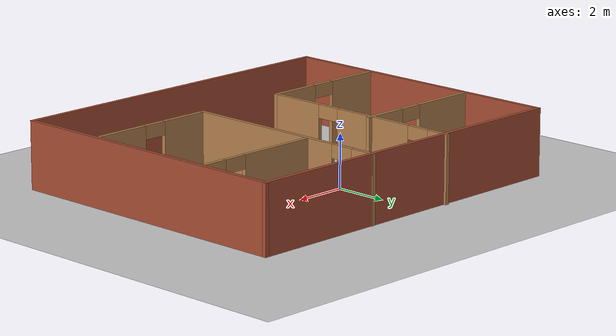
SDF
<sdf version="1.7">
 <world name="default">
  <light name="sun" type="directional">
   <pose>0 0 10 0 -0 0</pose>
   <diffuse>0.8 0.8 0.8 1</diffuse>
   <specular>0.2 0.2 0.2 1</specular>
   <attenuation>
    <range>1000</range>
    <constant>0.9</constant>
    <linear>0.01</linear>
    <quadratic>0.001</quadratic>
   </attenuation>
   <direction>-0.5 0.1 -0.9</direction>
   <spot><inner_angle>0</inner_angle><outer_angle>0</outer_angle><falloff>0</falloff></spot>
  </light>
  <model name="ground_plane">
   <static>1</static>
   <link name="link">
    <collision name="collision">
     <geometry><plane><normal>0 0 1</normal><size>100 100</size></plane></geometry>
     <surface><friction><ode><mu>100</mu><mu2>50</mu2></ode></friction></surface>
    </collision>
    <visual name="visual">
     <cast_shadows>0</cast_shadows>
     <geometry><plane><normal>0 0 1</normal><size>100 100</size></plane></geometry>
     <material>
      <script><uri>file://media/materials/scripts/gazebo.material</uri><name>Gazebo/Grey</name></script>
     </material>
    </visual>
   </link>
  </model>
  <gravity>0 0 -9.8</gravity>
  <magnetic_field>6e-06 2.3e-05 -4.2e-05</magnetic_field>
  <atmosphere type="adiabatic"/>
  <physics type="ode">
   <max_step_size>0.001</max_step_size>
   <real_time_factor>1</real_time_factor>
   <real_time_update_rate>1000</real_time_update_rate>
  </physics>
  <scene><ambient>0.4 0.4 0.4 1</ambient><background>0.7 0.7 0.7 1</background><shadows>1</shadows></scene>
  <audio><device>default</device></audio>
  <spherical_coordinates>
   <surface_model>EARTH_WGS84</surface_model>
   <latitude_deg>0</latitude_deg>
   <longitude_deg>0</longitude_deg>
   <elevation>0</elevation>
   <heading_deg>0</heading_deg>
  </spherical_coordinates>
  <model name="myfloor">
   <pose>0.719248 -1.8128 0 0 -0 0</pose>
   <link name="Wall_10">
    <collision name="Wall_10_Collision">
     <geometry><box><size>11.5 0.15 2.5</size></box></geometry>
     <pose>0 0 1.25 0 -0 0</pose>
    </collision>
    <visual name="Wall_10_Visual">
     <pose>0 0 1.25 0 -0 0</pose>
     <geometry><box><size>11.5 0.15 2.5</size></box></geometry>
     <material>
      <script><uri>file://media/materials/scripts/gazebo.material</uri><name>Gazebo/Bricks</name></script>
      <ambient>1 1 1 1</ambient>
     </material>
     <meta><layer>0</layer></meta>
    </visual>
    <pose>6.8 -0.045373 0 0 -0 1.5708</pose>
   </link>
   <link name="Wall_11">
    <collision name="Wall_11_Collision">
     <geometry><box><size>13.75 0.15 2.5</size></box></geometry>
     <pose>0 0 1.25 0 -0 0</pose>
    </collision>
    <visual name="Wall_11_Visual">
     <pose>0 0 1.25 0 -0 0</pose>
     <geometry><box><size>13.75 0.15 2.5</size></box></geometry>
     <material>
      <script><uri>file://media/materials/scripts/gazebo.material</uri><name>Gazebo/Bricks</name></script>
      <ambient>1 1 1 1</ambient>
     </material>
     <meta><layer>0</layer></meta>
    </visual>
    <pose>-0 5.62963 0 0 -0 3.14159</pose>
   </link>
   <link name="Wall_12">
    <collision name="Wall_12_Collision">
     <geometry><box><size>11.5 0.15 2.5</size></box></geometry>
     <pose>0 0 1.25 0 -0 0</pose>
    </collision>
    <visual name="Wall_12_Visual">
     <pose>0 0 1.25 0 -0 0</pose>
     <geometry><box><size>11.5 0.15 2.5</size></box></geometry>
     <material>
      <script><uri>file://media/materials/scripts/gazebo.material</uri><name>Gazebo/Bricks</name></script>
      <ambient>1 1 1 1</ambient>
     </material>
     <meta><layer>0</layer></meta>
    </visual>
    <pose>-6.8 -0.045373 0 0 -0 -1.5708</pose>
   </link>
   <link name="Wall_14">
    <pose>-1.84438 1.67037 0 0 -0 -1.5708</pose>
    <visual name="Wall_14_Visual_0">
     <pose>-3.6854 0 1.25 0 -0 0</pose>
     <geometry><box><size>0.879199 0.15 2.5</size></box></geometry>
     <material>
      <script><uri>file://media/materials/scripts/gazebo.material</uri><name>Gazebo/Wood</name></script>
      <ambient>1 1 1 1</ambient>
     </material>
     <meta><layer>0</layer></meta>
    </visual>
    <collision name="Wall_14_Collision_0">
     <geometry><box><size>0.879199 0.15 2.5</size></box></geometry>
     <pose>-3.6854 0 1.25 0 -0 0</pose>
    </collision>
    <visual name="Wall_14_Visual_1">
     <pose>-0.66978 0 1.25 0 -0 0</pose>
     <geometry><box><size>3.35204 0.15 2.5</size></box></geometry>
     <material>
      <script><uri>file://media/materials/scripts/gazebo.material</uri><name>Gazebo/Wood</name></script>
      <ambient>1 1 1 1</ambient>
     </material>
     <meta><layer>0</layer></meta>
    </visual>
    <collision name="Wall_14_Collision_1">
     <geometry><box><size>3.35204 0.15 2.5</size></box></geometry>
     <pose>-0.66978 0 1.25 0 -0 0</pose>
    </collision>
    <visual name="Wall_14_Visual_2">
     <pose>3.01562 0 1.25 0 -0 0</pose>
     <geometry><box><size>2.21876 0.15 2.5</size></box></geometry>
     <material>
      <script><uri>file://media/materials/scripts/gazebo.material</uri><name>Gazebo/Wood</name></script>
      <ambient>1 1 1 1</ambient>
     </material>
     <meta><layer>0</layer></meta>
    </visual>
    <collision name="Wall_14_Collision_2">
     <geometry><box><size>2.21876 0.15 2.5</size></box></geometry>
     <pose>3.01562 0 1.25 0 -0 0</pose>
    </collision>
    <visual name="Wall_14_Visual_3">
     <pose>-2.7958 0 2.25 0 -0 0</pose>
     <geometry><box><size>0.9 0.15 0.5</size></box></geometry>
     <material>
      <script><uri>file://media/materials/scripts/gazebo.material</uri><name>Gazebo/Wood</name></script>
      <ambient>1 1 1 1</ambient>
     </material>
     <meta><layer>0</layer></meta>
    </visual>
    <collision name="Wall_14_Collision_3">
     <geometry><box><size>0.9 0.15 0.5</size></box></geometry>
     <pose>-2.7958 0 2.25 0 -0 0</pose>
    </collision>
    <visual name="Wall_14_Visual_4">
     <pose>1.45624 0 2.25 0 -0 0</pose>
     <geometry><box><size>0.9 0.15 0.5</size></box></geometry>
     <material>
      <script><uri>file://media/materials/scripts/gazebo.material</uri><name>Gazebo/Wood</name></script>
      <ambient>1 1 1 1</ambient>
     </material>
     <meta><layer>0</layer></meta>
    </visual>
    <collision name="Wall_14_Collision_4">
     <geometry><box><size>0.9 0.15 0.5</size></box></geometry>
     <pose>1.45624 0 2.25 0 -0 0</pose>
    </collision>
   </link>
   <link name="Wall_15">
    <pose>-4.26938 -2.37963 0 0 -0 3.14159</pose>
    <visual name="Wall_15_Visual_0">
     <pose>-1.50978 0 1.25 0 -0 0</pose>
     <geometry><box><size>1.98045 0.15 2.5</size></box></geometry>
     <material>
      <script><uri>file://media/materials/scripts/gazebo.material</uri><name>Gazebo/Wood</name></script>
      <ambient>1 1 1 1</ambient>
     </material>
     <meta><layer>0</layer></meta>
    </visual>
    <collision name="Wall_15_Collision_0">
     <geometry><box><size>1.98045 0.15 2.5</size></box></geometry>
     <pose>-1.50978 0 1.25 0 -0 0</pose>
    </collision>
    <visual name="Wall_15_Visual_1">
     <pose>1.44022 0 1.25 0 -0 0</pose>
     <geometry><box><size>2.11955 0.15 2.5</size></box></geometry>
     <material>
      <script><uri>file://media/materials/scripts/gazebo.material</uri><name>Gazebo/Wood</name></script>
      <ambient>1 1 1 1</ambient>
     </material>
     <meta><layer>0</layer></meta>
    </visual>
    <collision name="Wall_15_Collision_1">
     <geometry><box><size>2.11955 0.15 2.5</size></box></geometry>
     <pose>1.44022 0 1.25 0 -0 0</pose>
    </collision>
    <visual name="Wall_15_Visual_2">
     <pose>-0.069552 0 2.25 0 -0 0</pose>
     <geometry><box><size>0.9 0.15 0.5</size></box></geometry>
     <material>
      <script><uri>file://media/materials/scripts/gazebo.material</uri><name>Gazebo/Wood</name></script>
      <ambient>1 1 1 1</ambient>
     </material>
     <meta><layer>0</layer></meta>
    </visual>
    <collision name="Wall_15_Collision_2">
     <geometry><box><size>0.9 0.15 0.5</size></box></geometry>
     <pose>-0.069552 0 2.25 0 -0 0</pose>
    </collision>
   </link>
   <link name="Wall_17">
    <pose>1.79585 1.60919 0 0 -0 -1.5708</pose>
    <visual name="Wall_17_Visual_0">
     <pose>-3.63951 0 1.25 0 -0 0</pose>
     <geometry><box><size>0.97097 0.15 2.5</size></box></geometry>
     <material>
      <script><uri>file://media/materials/scripts/gazebo.material</uri><name>Gazebo/Wood</name></script>
      <ambient>1 1 1 1</ambient>
     </material>
     <meta><layer>0</layer></meta>
    </visual>
    <collision name="Wall_17_Collision_0">
     <geometry><box><size>0.97097 0.15 2.5</size></box></geometry>
     <pose>-3.63951 0 1.25 0 -0 0</pose>
    </collision>
    <visual name="Wall_17_Visual_1">
     <pose>0.935485 0 1.25 0 -0 0</pose>
     <geometry><box><size>6.37903 0.15 2.5</size></box></geometry>
     <material>
      <script><uri>file://media/materials/scripts/gazebo.material</uri><name>Gazebo/Wood</name></script>
      <ambient>1 1 1 1</ambient>
     </material>
     <meta><layer>0</layer></meta>
    </visual>
    <collision name="Wall_17_Collision_1">
     <geometry><box><size>6.37903 0.15 2.5</size></box></geometry>
     <pose>0.935485 0 1.25 0 -0 0</pose>
    </collision>
    <visual name="Wall_17_Visual_2">
     <pose>-2.70403 0 2.25 0 -0 0</pose>
     <geometry><box><size>0.9 0.15 0.5</size></box></geometry>
     <material>
      <script><uri>file://media/materials/scripts/gazebo.material</uri><name>Gazebo/Wood</name></script>
      <ambient>1 1 1 1</ambient>
     </material>
     <meta><layer>0</layer></meta>
    </visual>
    <collision name="Wall_17_Collision_2">
     <geometry><box><size>0.9 0.15 0.5</size></box></geometry>
     <pose>-2.70403 0 2.25 0 -0 0</pose>
    </collision>
   </link>
   <link name="Wall_18">
    <pose>4.22085 -2.44081 0 0 -0 0</pose>
    <visual name="Wall_18_Visual_0">
     <pose>-1.50978 0 1.25 0 -0 0</pose>
     <geometry><box><size>1.98045 0.15 2.5</size></box></geometry>
     <material>
      <script><uri>file://media/materials/scripts/gazebo.material</uri><name>Gazebo/Wood</name></script>
      <ambient>1 1 1 1</ambient>
     </material>
     <meta><layer>0</layer></meta>
    </visual>
    <collision name="Wall_18_Collision_0">
     <geometry><box><size>1.98045 0.15 2.5</size></box></geometry>
     <pose>-1.50978 0 1.25 0 -0 0</pose>
    </collision>
    <visual name="Wall_18_Visual_1">
     <pose>1.44022 0 1.25 0 -0 0</pose>
     <geometry><box><size>2.11955 0.15 2.5</size></box></geometry>
     <material>
      <script><uri>file://media/materials/scripts/gazebo.material</uri><name>Gazebo/Wood</name></script>
      <ambient>1 1 1 1</ambient>
     </material>
     <meta><layer>0</layer></meta>
    </visual>
    <collision name="Wall_18_Collision_1">
     <geometry><box><size>2.11955 0.15 2.5</size></box></geometry>
     <pose>1.44022 0 1.25 0 -0 0</pose>
    </collision>
    <visual name="Wall_18_Visual_2">
     <pose>-0.069552 0 2.25 0 -0 0</pose>
     <geometry><box><size>0.9 0.15 0.5</size></box></geometry>
     <material>
      <script><uri>file://media/materials/scripts/gazebo.material</uri><name>Gazebo/Wood</name></script>
      <ambient>1 1 1 1</ambient>
     </material>
     <meta><layer>0</layer></meta>
    </visual>
    <collision name="Wall_18_Collision_2">
     <geometry><box><size>0.9 0.15 0.5</size></box></geometry>
     <pose>-0.069552 0 2.25 0 -0 0</pose>
    </collision>
   </link>
   <link name="Wall_20">
    <pose>4.28203 2.69194 0 0 -0 0</pose>
    <visual name="Wall_20_Visual_0">
     <pose>-0.959152 0 1.25 0 -0 0</pose>
     <geometry><box><size>3.0817 0.15 2.5</size></box></geometry>
     <material>
      <script><uri>file://media/materials/scripts/gazebo.material</uri><name>Gazebo/Wood</name></script>
      <ambient>1 1 1 1</ambient>
     </material>
     <meta><layer>0</layer></meta>
    </visual>
    <collision name="Wall_20_Collision_0">
     <geometry><box><size>3.0817 0.15 2.5</size></box></geometry>
     <pose>-0.959152 0 1.25 0 -0 0</pose>
    </collision>
    <visual name="Wall_20_Visual_1">
     <pose>1.99085 0 1.25 0 -0 0</pose>
     <geometry><box><size>1.0183 0.15 2.5</size></box></geometry>
     <material>
      <script><uri>file://media/materials/scripts/gazebo.material</uri><name>Gazebo/Wood</name></script>
      <ambient>1 1 1 1</ambient>
     </material>
     <meta><layer>0</layer></meta>
    </visual>
    <collision name="Wall_20_Collision_1">
     <geometry><box><size>1.0183 0.15 2.5</size></box></geometry>
     <pose>1.99085 0 1.25 0 -0 0</pose>
    </collision>
    <visual name="Wall_20_Visual_2">
     <pose>1.0317 0 2.25 0 -0 0</pose>
     <geometry><box><size>0.9 0.15 0.5</size></box></geometry>
     <material>
      <script><uri>file://media/materials/scripts/gazebo.material</uri><name>Gazebo/Wood</name></script>
      <ambient>1 1 1 1</ambient>
     </material>
     <meta><layer>0</layer></meta>
    </visual>
    <collision name="Wall_20_Collision_2">
     <geometry><box><size>0.9 0.15 0.5</size></box></geometry>
     <pose>1.0317 0 2.25 0 -0 0</pose>
    </collision>
   </link>
   <link name="Wall_25">
    <pose>-4.25 2.26368 0 0 -0 0</pose>
    <visual name="Wall_25_Visual_0">
     <pose>-1.31358 0 1.25 0 -0 0</pose>
     <geometry><box><size>2.62284 0.15 2.5</size></box></geometry>
     <material>
      <script><uri>file://media/materials/scripts/gazebo.material</uri><name>Gazebo/Wood</name></script>
      <ambient>1 1 1 1</ambient>
     </material>
     <meta><layer>0</layer></meta>
    </visual>
    <collision name="Wall_25_Collision_0">
     <geometry><box><size>2.62284 0.15 2.5</size></box></geometry>
     <pose>-1.31358 0 1.25 0 -0 0</pose>
    </collision>
    <visual name="Wall_25_Visual_1">
     <pose>1.76142 0 1.25 0 -0 0</pose>
     <geometry><box><size>1.72716 0.15 2.5</size></box></geometry>
     <material>
      <script><uri>file://media/materials/scripts/gazebo.material</uri><name>Gazebo/Wood</name></script>
      <ambient>1 1 1 1</ambient>
     </material>
     <meta><layer>0</layer></meta>
    </visual>
    <collision name="Wall_25_Collision_1">
     <geometry><box><size>1.72716 0.15 2.5</size></box></geometry>
     <pose>1.76142 0 1.25 0 -0 0</pose>
    </collision>
    <visual name="Wall_25_Visual_2">
     <pose>0.447843 0 2.25 0 -0 0</pose>
     <geometry><box><size>0.9 0.15 0.5</size></box></geometry>
     <material>
      <script><uri>file://media/materials/scripts/gazebo.material</uri><name>Gazebo/Wood</name></script>
      <ambient>1 1 1 1</ambient>
     </material>
     <meta><layer>0</layer></meta>
    </visual>
    <collision name="Wall_25_Collision_2">
     <geometry><box><size>0.9 0.15 0.5</size></box></geometry>
     <pose>0.447843 0 2.25 0 -0 0</pose>
    </collision>
   </link>
   <link name="Wall_9">
    <collision name="Wall_9_Collision">
     <geometry><box><size>13.75 0.15 2.5</size></box></geometry>
     <pose>0 0 1.25 0 -0 0</pose>
    </collision>
    <visual name="Wall_9_Visual">
     <pose>0 0 1.25 0 -0 0</pose>
     <geometry><box><size>13.75 0.15 2.5</size></box></geometry>
     <material>
      <script><uri>file://media/materials/scripts/gazebo.material</uri><name>Gazebo/Bricks</name></script>
      <ambient>1 1 1 1</ambient>
     </material>
     <meta><layer>0</layer></meta>
    </visual>
    <pose>-0 -5.72037 0 0 -0 0</pose>
   </link>
   <static>1</static>
  </model>
  <model name="bookshelf">
   <static>1</static>
   <link name="link">
    <inertial><mass>1</mass></inertial>
    <collision name="back">
     <pose>0 0.005 0.6 0 -0 0</pose>
     <geometry><box><size>0.9 0.01 1.2</size></box></geometry>
    </collision>
    <visual name="visual1">
     <pose>0 0.005 0.6 0 -0 0</pose>
     <geometry><box><size>0.9 0.01 1.2</size></box></geometry>
     <material>
      <script><uri>file://media/materials/scripts/gazebo.material</uri><name>Gazebo/Wood</name></script>
     </material>
    </visual>
    <collision name="left_side">
     <pose>0.45 -0.195 0.6 0 -0 0</pose>
     <geometry><box><size>0.02 0.4 1.2</size></box></geometry>
    </collision>
    <visual name="visual2">
     <pose>0.45 -0.195 0.6 0 -0 0</pose>
     <geometry><box><size>0.02 0.4 1.2</size></box></geometry>
     <material>
      <script><uri>file://media/materials/scripts/gazebo.material</uri><name>Gazebo/Wood</name></script>
     </material>
    </visual>
    <collision name="right_side">
     <pose>-0.45 -0.195 0.6 0 -0 0</pose>
     <geometry><box><size>0.02 0.4 1.2</size></box></geometry>
    </collision>
    <visual name="visual3">
     <pose>-0.45 -0.195 0.6 0 -0 0</pose>
     <geometry><box><size>0.02 0.4 1.2</size></box></geometry>
     <material>
      <script><uri>file://media/materials/scripts/gazebo.material</uri><name>Gazebo/Wood</name></script>
     </material>
    </visual>
    <collision name="bottom">
     <pose>0 -0.195 0.03 0 -0 0</pose>
     <geometry><box><size>0.88 0.4 0.06</size></box></geometry>
    </collision>
    <visual name="visual4">
     <pose>0 -0.195 0.03 0 -0 0</pose>
     <geometry><box><size>0.88 0.4 0.06</size></box></geometry>
     <material>
      <script><uri>file://media/materials/scripts/gazebo.material</uri><name>Gazebo/Wood</name></script>
     </material>
    </visual>
    <collision name="top">
     <pose>0 -0.195 1.19 0 -0 0</pose>
     <geometry><box><size>0.88 0.4 0.02</size></box></geometry>
    </collision>
    <visual name="visual5">
     <pose>0 -0.195 1.19 0 -0 0</pose>
     <geometry><box><size>0.88 0.4 0.02</size></box></geometry>
     <material>
      <script><uri>file://media/materials/scripts/gazebo.material</uri><name>Gazebo/Wood</name></script>
     </material>
    </visual>
    <collision name="low_shelf">
     <pose>0 -0.195 0.43 0 -0 0</pose>
     <geometry><box><size>0.88 0.4 0.02</size></box></geometry>
    </collision>
    <visual name="visual6">
     <pose>0 -0.195 0.43 0 -0 0</pose>
     <geometry><box><size>0.88 0.4 0.02</size></box></geometry>
     <material>
      <script><uri>file://media/materials/scripts/gazebo.material</uri><name>Gazebo/Wood</name></script>
     </material>
    </visual>
    <collision name="high_shelf">
     <pose>0 -0.195 0.8 0 -0 0</pose>
     <geometry><box><size>0.88 0.4 0.02</size></box></geometry>
    </collision>
    <visual name="visual7">
     <pose>0 -0.195 0.8 0 -0 0</pose>
     <geometry><box><size>0.88 0.4 0.02</size></box></geometry>
     <material>
      <script><uri>file://media/materials/scripts/gazebo.material</uri><name>Gazebo/Wood</name></script>
     </material>
    </visual>
   </link>
   <pose>-5.48255 0.575843 0 0.15406 -0.004103 -0.000637</pose>
  </model>
 </world>
</sdf>
